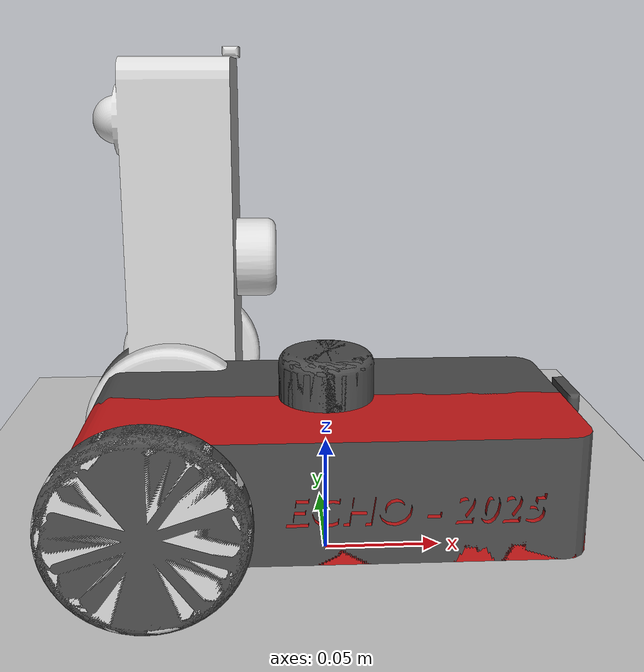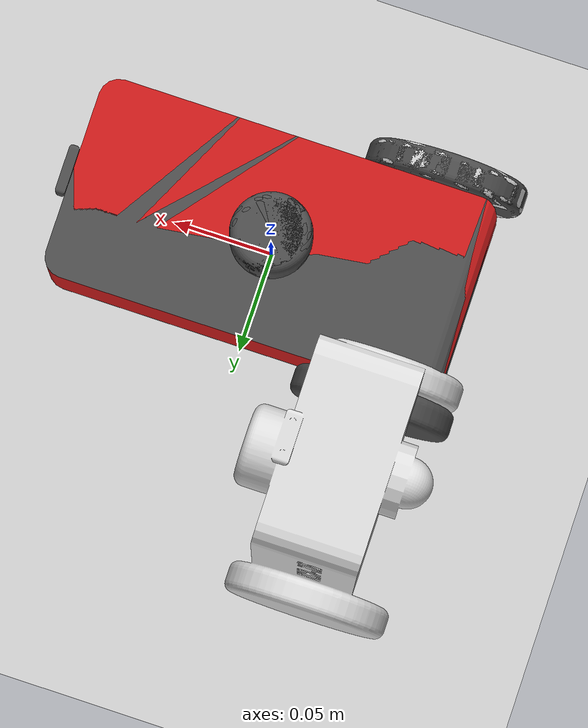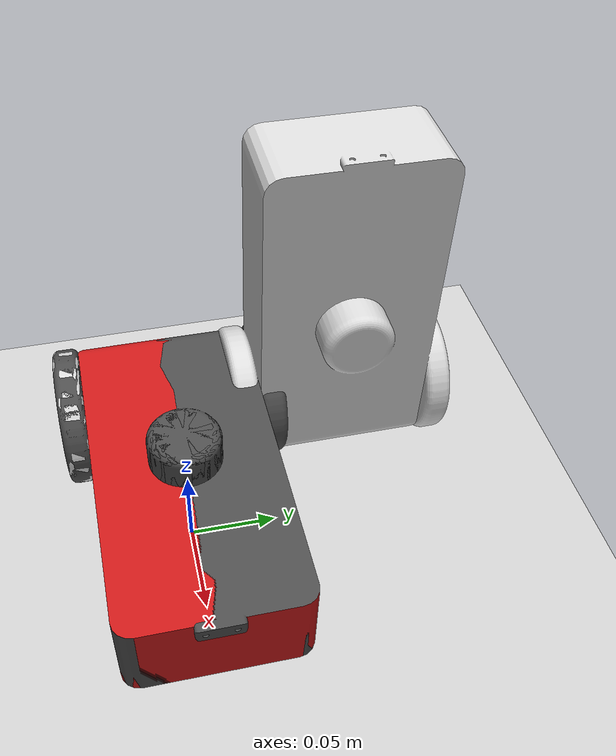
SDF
<?xml version="1.0" ?>
<sdf version="1.8">
  <world name="echo_world">
    <!-- Physics -->
    <physics name="1ms" type="ignored">
      <max_step_size>0.001</max_step_size>
      <real_time_factor>1.0</real_time_factor>
    </physics>

    <!-- Plugins -->
    <plugin filename="libignition-gazebo-physics-system.so" name="ignition::gazebo::systems::Physics"/>
    <plugin filename="libignition-gazebo-user-commands-system.so" name="ignition::gazebo::systems::UserCommands"/>
    <plugin filename="libignition-gazebo-scene-broadcaster-system.so" name="ignition::gazebo::systems::SceneBroadcaster"/>

    <!-- Lighting -->
    <light type="directional" name="sun">
      <cast_shadows>true</cast_shadows>
      <pose>0 0 10 0 0 0</pose>
      <diffuse>0.8 0.8 0.8 1</diffuse>
      <specular>0.2 0.2 0.2 1</specular>
      <attenuation>
        <range>1000</range>
        <constant>0.9</constant>
        <linear>0.01</linear>
        <quadratic>0.001</quadratic>
      </attenuation>
      <direction>-0.5 0.1 -0.9</direction>
    </light>

    <!-- Ground Plane -->
    <model name="ground_plane">
      <static>true</static>
      <link name="link">
        <collision name="collision">
          <geometry>
            <plane>
              <normal>0 0 1</normal>
            </plane>
          </geometry>
        </collision>
        <visual name="visual">
          <geometry>
            <plane>
              <normal>0 0 1</normal>
              <size>100 100</size>
            </plane>
          </geometry>
          <material>
            <ambient>0.8 0.8 0.8 1</ambient>
            <diffuse>0.8 0.8 0.8 1</diffuse>
            <specular>0.8 0.8 0.8 1</specular>
          </material>
        </visual>
      </link>
    </model>

    <model name='echo_v1'>
      <link name='base_footprint'>
        <inertial>
          <pose>0.001202 0.024079 0.021371 0 -0 0</pose>
          <mass>1.02739</mass>
          <inertia>
            <ixx>0.00113964</ixx>
            <ixy>2.31307e-05</ixy>
            <ixz>1.8698e-06</ixz>
            <iyy>0.00422753</iyy>
            <iyz>3.5146e-05</iyz>
            <izz>0.00355148</izz>
          </inertia>
        </inertial>

        <collision name='base_footprint_fixed_joint_lump__base_link_collision'>
          <pose>0 0 0.02 -1.5708 0 0</pose>
          <geometry>
            <mesh>
              <scale>1 1 1</scale>
              <uri>file:///home/cameron/Project_Echo/Educational/amr_ws/src/echo_sim_v1/meshes/base_link.STL</uri>
            </mesh>
          </geometry>
        </collision>

        <collision name='base_footprint_fixed_joint_lump__camera_link_collision_1'>
          <pose>0.1 0 0.069 0 -0 0</pose>
          <geometry>
            <mesh>
              <scale>1 1 1</scale>
              <uri>file:///home/cameron/Project_Echo/Educational/amr_ws/src/echo_sim_v1/meshes/camera_link.STL</uri>
            </mesh>
          </geometry>
        </collision>

        <collision name='base_footprint_fixed_joint_lump__caster_wheel_link_collision_2'>
          <pose>0.07 -0 0.012 -3.14158 2e-06 1.84679</pose>
          <geometry>
            <mesh>
              <scale>1 1 1</scale>
              <uri>file:///home/cameron/Project_Echo/Educational/amr_ws/src/echo_sim_v1/meshes/caster_wheel_link.STL</uri>
            </mesh>
          </geometry>
        </collision>

        <collision name='base_footprint_fixed_joint_lump__lidar_link_collision_3'>
          <pose>0 0 0.07 0 -1e-06 -0.30388</pose>
          <geometry>
            <mesh>
              <scale>1 1 1</scale>
              <uri>file:///home/cameron/Project_Echo/Educational/amr_ws/src/echo_sim_v1/meshes/lidar_link.STL</uri>
            </mesh>
          </geometry>
        </collision>

        <visual name='base_footprint_fixed_joint_lump__base_link_visual'>
          <pose>0 0 0.02 -1.5708 0 0</pose>
          <geometry>
            <mesh>
              <scale>1 1 1</scale>
              <uri>file:///home/cameron/Project_Echo/Educational/amr_ws/src/echo_sim_v1/meshes/base_link.STL</uri>
            </mesh>
          </geometry>
          <material>
            <ambient>0.6 0.1 0.1 1</ambient>
            <diffuse>0.8 0.1 0.1 1</diffuse>
            <specular>0.3 0.1 0.1 1</specular>
          </material>
        </visual>

        <visual name='base_footprint_fixed_joint_lump__camera_link_visual_1'>
          <pose>0.1 0 0.069 0 -0 0</pose>
          <geometry>
            <mesh>
              <scale>1 1 1</scale>
              <uri>file:///home/cameron/Project_Echo/Educational/amr_ws/src/echo_sim_v1/meshes/camera_link.STL</uri>
            </mesh>
          </geometry>
          <material>
            <ambient>0.2 0.2 0.2 1</ambient>
            <diffuse>0.3 0.3 0.3 1</diffuse>
            <specular>0.1 0.1 0.1 1</specular>
          </material>
        </visual>

        <visual name='base_footprint_fixed_joint_lump__caster_wheel_link_visual_2'>
          <pose>0.07 -0 0.012 -3.14158 2e-06 1.84679</pose>
          <geometry>
            <mesh>
              <scale>1 1 1</scale>
              <uri>file:///home/cameron/Project_Echo/Educational/amr_ws/src/echo_sim_v1/meshes/caster_wheel_link.STL</uri>
            </mesh>
          </geometry>
          <material>
            <ambient>0.7 0.7 0.7 1</ambient>
            <diffuse>0.85 0.85 0.85 1</diffuse>
            <specular>0.4 0.4 0.4 1</specular>
          </material>
        </visual>

        <visual name='base_footprint_fixed_joint_lump__lidar_link_visual_3'>
          <pose>0 0 0.07 0 -1e-06 -0.30388</pose>
          <geometry>
            <mesh>
              <scale>1 1 1</scale>
              <uri>file:///home/cameron/Project_Echo/Educational/amr_ws/src/echo_sim_v1/meshes/lidar_link.STL</uri>
            </mesh>
          </geometry>
          <material>
            <ambient>0.2 0.2 0.2 1</ambient>
            <diffuse>0.3 0.3 0.3 1</diffuse>
            <specular>0.1 0.1 0.1 1</specular>
          </material>
        </visual>
      </link>

      <joint name='base_link_to_left_wheel' type='revolute'>
        <pose relative_to='base_footprint'>-0.07 0.05 0.04 0.785394 -1.57079 2.35619</pose>
        <parent>base_footprint</parent>
        <child>left_wheel_link</child>
        <axis>
          <xyz>0 -1 0</xyz>
          <limit>
            <lower>-1e+16</lower>
            <upper>1e+16</upper>
          </limit>
          <dynamics>
            <spring_reference>0</spring_reference>
            <spring_stiffness>0</spring_stiffness>
          </dynamics>
        </axis>
      </joint>

      <link name='left_wheel_link'>
        <pose relative_to='base_link_to_left_wheel'>0 0 0 0 -0 0</pose>
        <inertial>
          <pose>-0 0.0075 0 0 -0 0</pose>
          <mass>0.073711</mass>
          <inertia>
            <ixx>3.0207e-05</ixx>
            <ixy>-3.1866e-38</ixy>
            <ixz>1.075e-37</ixz>
            <iyy>5.7735e-05</iyy>
            <iyz>1.0613e-38</iyz>
            <izz>3.0207e-05</izz>
          </inertia>
        </inertial>
        <collision name='left_wheel_link_collision'>
          <pose>0 0 0 0 -0 0</pose>
          <geometry>
            <mesh>
              <scale>1 1 1</scale>
              <uri>file:///home/cameron/Project_Echo/Educational/amr_ws/src/echo_sim_v1/meshes/left_wheel_link.STL</uri>
            </mesh>
          </geometry>
        </collision>
        <visual name='left_wheel_link_visual'>
          <pose>0 0 0 0 -0 0</pose>
          <geometry>
            <mesh>
              <scale>1 1 1</scale>
              <uri>file:///home/cameron/Project_Echo/Educational/amr_ws/src/echo_sim_v1/meshes/left_wheel_link.STL</uri>
            </mesh>
          </geometry>
          <material>
            <ambient>0.7 0.7 0.7 1</ambient>
            <diffuse>0.85 0.85 0.85 1</diffuse>
            <specular>0.4 0.4 0.4 1</specular>
          </material>
        </visual>
      </link>

      <joint name='base_link_to_right_wheel' type='revolute'>
        <pose relative_to='base_footprint'>-0.07 -0.05 0.04 0 -0 0</pose>
        <parent>base_footprint</parent>
        <child>right_wheel_link</child>
        <axis>
          <xyz>0 1 0</xyz>
          <limit>
            <lower>-1e+16</lower>
            <upper>1e+16</upper>
          </limit>
          <dynamics>
            <spring_reference>0</spring_reference>
            <spring_stiffness>0</spring_stiffness>
          </dynamics>
        </axis>
      </joint>

      <link name='right_wheel_link'>
        <pose relative_to='base_link_to_right_wheel'>0 0 0 0 -0 0</pose>
        <inertial>
          <pose>-0 -0.0075 0 0 -0 0</pose>
          <mass>0.073711</mass>
          <inertia>
            <ixx>3.0207e-05</ixx>
            <ixy>-3.1866e-38</ixy>
            <ixz>1.075e-37</ixz>
            <iyy>5.7735e-05</iyy>
            <iyz>1.0613e-38</iyz>
            <izz>3.0207e-05</izz>
          </inertia>
        </inertial>
        <collision name='right_wheel_link_collision'>
          <pose>0 0 0 0 -0 0</pose>
          <geometry>
            <mesh>
              <scale>1 1 1</scale>
              <uri>file:///home/cameron/Project_Echo/Educational/amr_ws/src/echo_sim_v1/meshes/right_wheel_link.STL</uri>
            </mesh>
          </geometry>
        </collision>
        <visual name='right_wheel_link_visual'>
          <pose>0 0 0 0 -0 0</pose>
          <geometry>
            <mesh>
              <scale>1 1 1</scale>
              <uri>file:///home/cameron/Project_Echo/Educational/amr_ws/src/echo_sim_v1/meshes/right_wheel_link.STL</uri>
            </mesh>
          </geometry>
          <material>
            <ambient>0.7 0.7 0.7 1</ambient>
            <diffuse>0.85 0.85 0.85 1</diffuse>
            <specular>0.4 0.4 0.4 1</specular>
          </material>
        </visual>
      </link>
    </model>

    <!-- Triggered Keypress Plugins -->
    <plugin filename="libignition-gazebo-triggered-publisher-system.so"
            name="ignition::gazebo::systems::TriggeredPublisher">
      <input type="ignition.msgs.Int32" topic="/keyboard/keypress">
        <match field="data">16777235</match>
      </input>
      <output type="ignition.msgs.Twist" topic="/cmd_vel">
        linear: {x: 0.5}, angular: {z: 0.0}
      </output>
    </plugin>

    <plugin filename="libignition-gazebo-triggered-publisher-system.so"
            name="ignition::gazebo::systems::TriggeredPublisher">
      <input type="ignition.msgs.Int32" topic="/keyboard/keypress">
        <match field="data">16777237</match>
      </input>
      <output type="ignition.msgs.Twist" topic="/cmd_vel">
        linear: {x: -0.5}, angular: {z: 0.0}
      </output>
    </plugin>

    <plugin filename="libignition-gazebo-triggered-publisher-system.so"
            name="ignition::gazebo::systems::TriggeredPublisher">
      <input type="ignition.msgs.Int32" topic="/keyboard/keypress">
        <match field="data">16777236</match>
      </input>
      <output type="ignition.msgs.Twist" topic="/cmd_vel">
        linear: {x: 0.0}, angular: {z: -0.5}
      </output>
    </plugin>

    <plugin filename="libignition-gazebo-triggered-publisher-system.so"
            name="ignition::gazebo::systems::TriggeredPublisher">
      <input type="ignition.msgs.Int32" topic="/keyboard/keypress">
        <match field="data">16777234</match>
      </input>
      <output type="ignition.msgs.Twist" topic="/cmd_vel">
        linear: {x: 0.0}, angular: {z: 0.5}
      </output>
    </plugin>
  </world>
</sdf>
